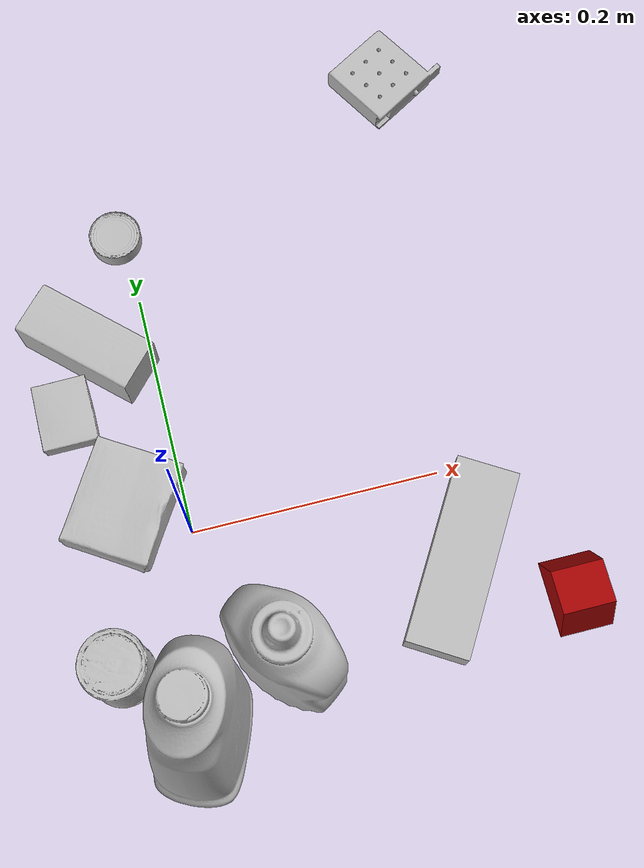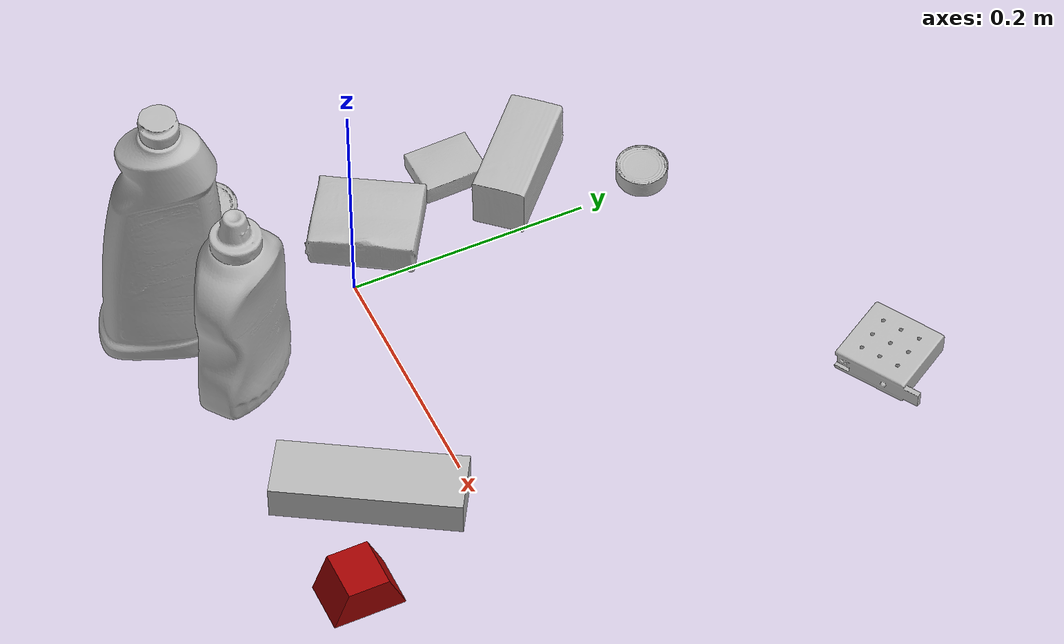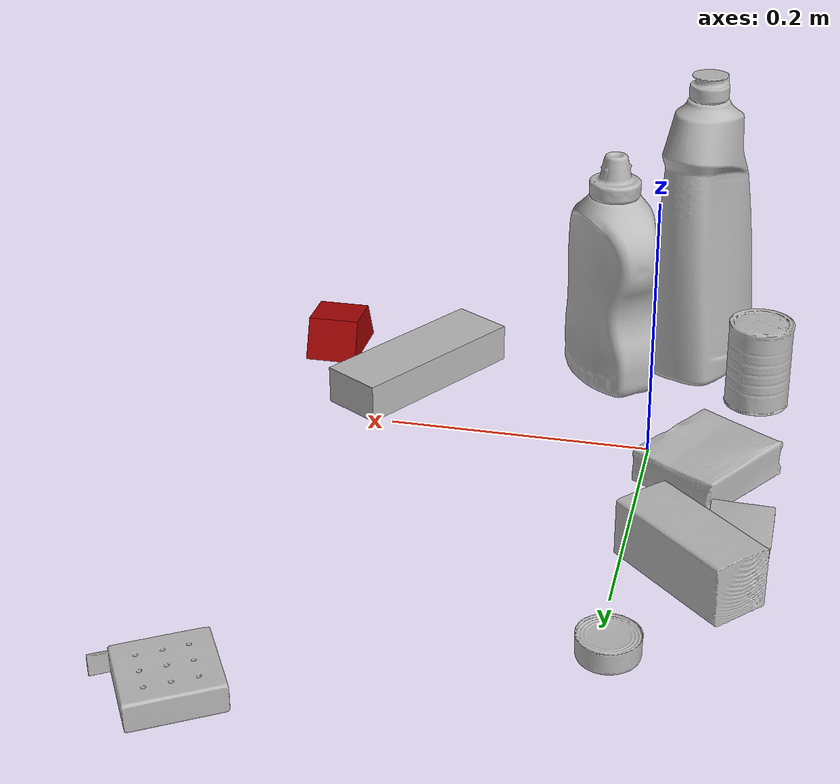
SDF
<sdf version="1.4">
  <world name="default">
    <light name="light1" type="point">
      <pose>0 0 1 0 0 0</pose>
      <diffuse>3 3 3 1</diffuse>
      <specular>3 3 3 1</specular>
    </light>
    <light name="light2" type="point">
      <pose>0 0.5 2 0 0 0</pose>
      <diffuse>1 1 1 1</diffuse>
      <specular>1 1 1 1</specular>
    </light>
    <light name="light3" type="point">
      <pose>0 0.5 2 0 0 0</pose>
      <diffuse>3 3 3 1</diffuse>
      <specular>3 3 3 1</specular>
    </light>
    <scene>
      <ambient>0.7 0.7 0.7</ambient>
    </scene>
    <model name="bottle1">
      <link name="link_bottle1">
        <collision name="default">
          <geometry>
            <mesh>
              <uri>model://mustard_bottle/collision_meshes/collision.obj</uri>
              <scale>1.0 1.0 1.0</scale>
            </mesh>
          </geometry>
          <surface>
            <friction>
              <ode>
                <mu>0.5</mu>
                <mu2>0.5</mu2>
              </ode>
            </friction>
          <contact>
        <ode>
            <max_vel>0</max_vel>
            <min_depth>0.0001</min_depth>
            <kp>1e8</kp>
        </ode>
    </contact></surface>
        </collision>
        <visual name="default">
          <geometry>
            <mesh>
              <uri>model://mustard_bottle/visual_meshes/visual.dae</uri>
              <scale>1.0 1.0 1.0</scale>
            </mesh>
          </geometry>
        </visual>
        <inertial>
          <mass>0.6762011647224426</mass>
          <pose>0.0005032454500906169 -0.00015647402324248105 -0.0174757931381464 0.0004182330054410876 0.0009465793907204819 0.02485376893997312</pose>
          <inertia>
            <ixx>0.001877718</ixx>
            <iyy>0.0016475386</iyy>
            <izz>0.0004948735</izz>
            <ixy>0</ixy>
            <ixz>0</ixz>
            <iyz>0</iyz>
          </inertia>
        </inertial>
      </link>
      <pose>0.04836751148104668 -0.11400492489337921 0.09615201503038406 1.4981239000972551e-05 1.6623974723242214e-05 -2.498418769227466</pose>
    </model>
    <model name="bottle2">
      <link name="link_bottle2">
        <collision name="default">
          <geometry>
            <mesh>
              <uri>model://bleach_cleanser/collision_meshes/collision.obj</uri>
              <scale>1.0 1.0 1.0</scale>
            </mesh>
          </geometry>
          <surface>
            <friction>
              <ode>
                <mu>0.5</mu>
                <mu2>0.5</mu2>
              </ode>
            </friction>
          <contact>
        <ode>
            <max_vel>0</max_vel>
            <min_depth>0.0001</min_depth>
            <kp>1e8</kp>
        </ode>
    </contact></surface>
        </collision>
        <visual name="default">
          <geometry>
            <mesh>
              <uri>model://bleach_cleanser/visual_meshes/visual.dae</uri>
              <scale>1.0 1.0 1.0</scale>
            </mesh>
          </geometry>
        </visual>
        <inertial>
          <mass>1.3947629928588867</mass>
          <pose>0.00012193183647468686 0.0037838828284293413 -0.02442161738872528 -0.07381670616230765 0.000420115363335565 -0.006875068774372656</pose>
          <inertia>
            <ixx>0.0067885136</ixx>
            <iyy>0.006325901</iyy>
            <izz>0.0011606595</izz>
            <ixy>0</ixy>
            <ixz>0</ixz>
            <iyz>0</iyz>
          </inertia>
        </inertial>
      </link>
      <pose>-0.022784164175391197 -0.15374043583869934 0.1257639080286026 -0.004163919690933545 0.005417411953982138 -0.4007480749726765</pose>
    </model>
    <model name="toy1">
      <link name="link_toy1">
        <collision name="default">
          <geometry>
            <mesh>
              <uri>model://nine_hole_peg_test/collision_meshes/collision.obj</uri>
              <scale>0.5 0.5 0.5</scale>
            </mesh>
          </geometry>
          <surface>
            <friction>
              <ode>
                <mu>0.5</mu>
                <mu2>0.5</mu2>
              </ode>
            </friction>
          <contact>
        <ode>
            <max_vel>0</max_vel>
            <min_depth>0.0001</min_depth>
            <kp>1e8</kp>
        </ode>
    </contact></surface>
        </collision>
        <visual name="default">
          <geometry>
            <mesh>
              <uri>model://nine_hole_peg_test/visual_meshes/visual.dae</uri>
              <scale>0.5 0.5 0.5</scale>
            </mesh>
          </geometry>
        </visual>
        <inertial>
          <mass>0.11556825786828995</mass>
          <pose>-0.0023086932487785816 -0.004823807626962662 1.3230343029135838e-05 -0.0014666797633517714 0.0007194158879745651 -0.6342419016734399</pose>
          <inertia>
            <ixx>4.5177487e-05</ixx>
            <iyy>4.2181746e-05</iyy>
            <izz>7.9164296e-05</izz>
            <ixy>0</ixy>
            <ixz>0</ixz>
            <iyz>0</iyz>
          </inertia>
        </inertial>
      </link>
      <pose>0.2512609362602234 0.3509189188480377 0.010385500267148018 4.909794604909611e-09 1.366503662238146e-09 -1.0273211417763595</pose>
    </model>
    <model name="toy2">
      <link name="link_toy2">
        <collision name="default">
          <geometry>
            <mesh>
              <uri>model://prism/collision_meshes/collision.obj</uri>
              <scale>0.5 0.5 0.5</scale>
            </mesh>
          </geometry>
          <surface>
            <friction>
              <ode>
                <mu>0.5</mu>
                <mu2>0.5</mu2>
              </ode>
            </friction>
          <contact>
        <ode>
            <max_vel>0</max_vel>
            <min_depth>0.0001</min_depth>
            <kp>1e8</kp>
        </ode>
    </contact></surface>
        </collision>
        <visual name="default">
          <geometry>
            <mesh>
              <uri>model://prism/visual_meshes/visual.dae</uri>
              <scale>0.5 0.5 0.5</scale>
            </mesh>
          </geometry>
        </visual>
        <inertial>
          <mass>0.033433690667152405</mass>
          <pose>-4.9267986469203606e-05 -2.480786349678965e-07 -0.001693455153144896 0.0 0.00655918030046738 0.0</pose>
          <inertia>
            <ixx>7.543374e-06</ixx>
            <iyy>9.116264e-06</iyy>
            <izz>1.1166334e-05</izz>
            <ixy>0</ixy>
            <ixz>0</ixz>
            <iyz>0</iyz>
          </inertia>
        </inertial>
      </link>
      <pose>0.27809643745422363 -0.11886867135763168 0.01608499512076378 -6.386295952372723e-08 2.1778509190135158e-08 1.5722536366605828</pose>
    </model>
    <model name="can1">
      <link name="link_can1">
        <collision name="default">
          <geometry>
            <mesh>
              <uri>model://master_chef_can/collision_meshes/collision.obj</uri>
              <scale>0.5 0.5 0.5</scale>
            </mesh>
          </geometry>
          <surface>
            <friction>
              <ode>
                <mu>0.5</mu>
                <mu2>0.5</mu2>
              </ode>
            </friction>
          <contact>
        <ode>
            <max_vel>0</max_vel>
            <min_depth>0.0001</min_depth>
            <kp>1e8</kp>
        </ode>
    </contact></surface>
        </collision>
        <visual name="default">
          <geometry>
            <mesh>
              <uri>model://master_chef_can/visual_meshes/visual.dae</uri>
              <scale>0.5 0.5 0.5</scale>
            </mesh>
          </geometry>
        </visual>
        <inertial>
          <mass>0.10766725987195969</mass>
          <pose>-4.661964703700505e-05 1.3926853625889635e-07 -5.079878610558808e-05 -0.0017995160150511523 0.000647916474058074 -0.6102670332280266</pose>
          <inertia>
            <ixx>6.319339e-05</ixx>
            <iyy>6.2728286e-05</iyy>
            <izz>3.491918e-05</izz>
            <ixy>0</ixy>
            <ixz>0</ixz>
            <iyz>0</iyz>
          </inertia>
        </inertial>
      </link>
      <pose>-0.07413138449192047 -0.09452234208583832 0.03530197590589523 -6.842495930722752e-07 -6.653237895579693e-07 -3.1038439207137247</pose>
    </model>
    <model name="can2">
      <link name="link_can2">
        <collision name="default">
          <geometry>
            <mesh>
              <uri>model://tuna_fish_can/collision_meshes/collision.obj</uri>
              <scale>0.5 0.5 0.5</scale>
            </mesh>
          </geometry>
          <surface>
            <friction>
              <ode>
                <mu>0.5</mu>
                <mu2>0.5</mu2>
              </ode>
            </friction>
          <contact>
        <ode>
            <max_vel>0</max_vel>
            <min_depth>0.0001</min_depth>
            <kp>1e8</kp>
        </ode>
    </contact></surface>
        </collision>
        <visual name="default">
          <geometry>
            <mesh>
              <uri>model://tuna_fish_can/visual_meshes/visual.dae</uri>
              <scale>0.5 0.5 0.5</scale>
            </mesh>
          </geometry>
        </visual>
        <inertial>
          <mass>0.02740846574306488</mass>
          <pose>-2.0361561837489717e-05 -7.256384378706571e-06 -0.0005269024986773729 -0.0017944791545750336 0.000171617609773777 0.24054039995463303</pose>
          <inertia>
            <ixx>3.7056664e-06</ixx>
            <iyy>3.6902204e-06</iyy>
            <izz>6.3409243e-06</izz>
            <ixy>0</ixy>
            <ixz>0</ixz>
            <iyz>0</iyz>
          </inertia>
        </inertial>
      </link>
      <pose>-0.007843713276088238 0.2580502927303314 0.008520003408193588 1.3517599789213471e-08 7.894398635792862e-09 3.0350126033085254</pose>
    </model>
    <model name="box1">
      <link name="link_box1">
        <collision name="default">
          <geometry>
            <mesh>
              <uri>model://gelatin_box/collision_meshes/collision.obj</uri>
              <scale>1.0 1.0 1.0</scale>
            </mesh>
          </geometry>
          <surface>
            <friction>
              <ode>
                <mu>0.5</mu>
                <mu2>0.5</mu2>
              </ode>
            </friction>
          <contact>
        <ode>
            <max_vel>0</max_vel>
            <min_depth>0.0001</min_depth>
            <kp>1e8</kp>
        </ode>
    </contact></surface>
        </collision>
        <visual name="default">
          <geometry>
            <mesh>
              <uri>model://gelatin_box/visual_meshes/visual.dae</uri>
              <scale>1.0 1.0 1.0</scale>
            </mesh>
          </geometry>
        </visual>
        <inertial>
          <mass>0.1693437397480011</mass>
          <pose>0.0004319618456065655 0.00011156872642459348 -0.00036403213744051754 -0.0010503721973280913 -0.004755817758053359 0.01644055760876268</pose>
          <inertia>
            <ixx>0.00011954286</ixx>
            <iyy>8.538885e-05</iyy>
            <izz>0.0001819709</izz>
            <ixy>0</ixy>
            <ixz>0</ixz>
            <iyz>0</iyz>
          </inertia>
        </inertial>
      </link>
      <pose>-0.047056037932634354 0.031402502208948135 0.015168312005698681 0.005597372489573422 -0.007304455726217571 -0.5676662923408362</pose>
    </model>
    <model name="box2">
      <link name="link_box2">
        <collision name="default">
          <geometry>
            <mesh>
              <uri>model://pudding_box/collision_meshes/collision.obj</uri>
              <scale>0.5 0.5 0.5</scale>
            </mesh>
          </geometry>
          <surface>
            <friction>
              <ode>
                <mu>0.5</mu>
                <mu2>0.5</mu2>
              </ode>
            </friction>
          <contact>
        <ode>
            <max_vel>0</max_vel>
            <min_depth>0.0001</min_depth>
            <kp>1e8</kp>
        </ode>
    </contact></surface>
        </collision>
        <visual name="default">
          <geometry>
            <mesh>
              <uri>model://pudding_box/visual_meshes/visual.dae</uri>
              <scale>0.5 0.5 0.5</scale>
            </mesh>
          </geometry>
        </visual>
        <inertial>
          <mass>0.04695427790284157</mass>
          <pose>0.00024474109522998333 0.00040339428232982755 -0.0002594413817860186 0.005213102262859105 -0.0066037982576109796 0.020079825159299278</pose>
          <inertia>
            <ixx>1.3269848e-05</ixx>
            <iyy>8.9280475e-06</iyy>
            <izz>1.95964e-05</izz>
            <ixy>0</ixy>
            <ixz>0</ixz>
            <iyz>0</iyz>
          </inertia>
        </inertial>
      </link>
      <pose>-0.077678382396698 0.115260548889637 0.009862899780273438 0.022348710337274633 -0.011391632444117243 0.0005464550870240638</pose>
    </model>
    <model name="box3">
      <link name="link_box3">
        <collision name="default">
          <geometry>
            <mesh>
              <uri>model://wood_block/collision_meshes/collision.obj</uri>
              <scale>0.5 0.5 0.5</scale>
            </mesh>
          </geometry>
          <surface>
            <friction>
              <ode>
                <mu>0.5</mu>
                <mu2>0.5</mu2>
              </ode>
            </friction>
          <contact>
        <ode>
            <max_vel>0</max_vel>
            <min_depth>0.0001</min_depth>
            <kp>1e8</kp>
        </ode>
    </contact></surface>
        </collision>
        <visual name="default">
          <geometry>
            <mesh>
              <uri>model://wood_block/visual_meshes/visual.dae</uri>
              <scale>0.5 0.5 0.5</scale>
            </mesh>
          </geometry>
        </visual>
        <inertial>
          <mass>0.2591375410556793</mass>
          <pose>-2.9066577553749084e-06 -0.00028540476341731846 0.00013204291462898254 -0.05221026556657302 -0.005192695801982805 -0.006861378038707315</pose>
          <inertia>
            <ixx>8.669131e-05</ixx>
            <iyy>0.00027385785</iyy>
            <izz>0.00027283354</izz>
            <ixy>0</ixy>
            <ixz>0</ixz>
            <iyz>0</iyz>
          </inertia>
        </inertial>
      </link>
      <pose>-0.047621775418519974 0.16550107300281525 0.022629262879490852 -0.005208407723307249 0.005718737943053288 2.3942006749175633</pose>
    </model>
    <model name="box4">
      <link name="link_box4">
        <collision name="default">
          <geometry>
            <mesh>
              <uri>model://jenga/collision_meshes/collision.obj</uri>
              <scale>1.0 1.0 1.0</scale>
            </mesh>
          </geometry>
          <surface>
            <friction>
              <ode>
                <mu>0.5</mu>
                <mu2>0.5</mu2>
              </ode>
            </friction>
          <contact>
        <ode>
            <max_vel>0</max_vel>
            <min_depth>0.0001</min_depth>
            <kp>1e8</kp>
        </ode>
    </contact></surface>
        </collision>
        <visual name="default">
          <geometry>
            <mesh>
              <uri>model://jenga/visual_meshes/visual.dae</uri>
              <scale>1.0 1.0 1.0</scale>
            </mesh>
          </geometry>
        </visual>
        <inertial>
          <mass>0.14610815048217773</mass>
          <pose>-2.502855807051674e-07 -0.00010250010382151231 -4.092339804628864e-05 0.0 -7.342155186052628e-07 0.0</pose>
          <inertia>
            <ixx>4.043167e-05</ixx>
            <iyy>0.0002739639</iyy>
            <izz>0.00029247976</izz>
            <ixy>0</ixy>
            <ixz>0</ixz>
            <iyz>0</iyz>
          </inertia>
        </inertial>
      </link>
      <pose>0.19739994406700134 -0.07407914847135544 0.014999997802078724 -5.427353443720323e-09 -1.8451397787424633e-09 1.0249858371524943</pose>
    </model>
  <physics type="ode">
      <max_contacts>50</max_contacts>
      <ode>
        <solver>
          <type>quick</type>
          <iters>75</iters>
        </solver>
        <constraints>
          <contact_max_correcting_vel>0</contact_max_correcting_vel>
          <contact_surface_layer>0</contact_surface_layer>
        </constraints>
      </ode>
    </physics></world>
</sdf>
